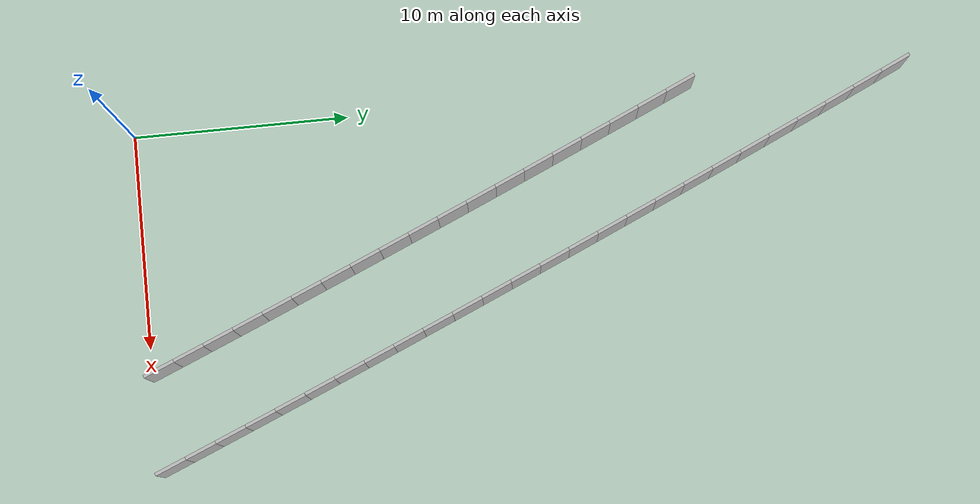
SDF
<?xml version="1.0" ?>
<sdf version="1.6">
  <model name="sps_4435">
    <pose frame="">0 0 0 0 -0 0</pose>
    <static>1</static>
    <self_collide>0</self_collide>
    <allow_auto_disable>0</allow_auto_disable>
    <link name="Wall10172">
      <kinematic>0</kinematic>
      <gravity>1</gravity>
      <self_collide>0</self_collide>
      <collision name="collision">
        <geometry>
          <box>
            <size>1.49656 0.15 2.5</size>
          </box>
        </geometry>
        <pose frame="">0 0 0 0 -0 0</pose>
      </collision>
      <visual name="visual">
        <geometry>
          <box>
            <size>1.49656 0.15 2.5</size>
          </box>
        </geometry>
        <pose frame="">0 0 0 0 -0 0</pose>
        <cast_shadows>1</cast_shadows>
        <transparency>0.0</transparency>
      </visual>
      <pose frame="">11.1612 0.722976 1.25 0 -0 1.96702</pose>
    </link>
    <link name="Wall10173">
      <kinematic>0</kinematic>
      <gravity>1</gravity>
      <self_collide>0</self_collide>
      <collision name="collision">
        <geometry>
          <box>
            <size>1.49668 0.15 2.5</size>
          </box>
        </geometry>
        <pose frame="">0 0 0 0 -0 0</pose>
      </collision>
      <visual name="visual">
        <geometry>
          <box>
            <size>1.49668 0.15 2.5</size>
          </box>
        </geometry>
        <pose frame="">0 0 0 0 -0 0</pose>
        <cast_shadows>1</cast_shadows>
        <transparency>0.0</transparency>
      </visual>
      <pose frame="">10.5826 2.10319 1.25 0 -0 1.96858</pose>
    </link>
    <link name="Wall10174">
      <kinematic>0</kinematic>
      <gravity>1</gravity>
      <self_collide>0</self_collide>
      <collision name="collision">
        <geometry>
          <box>
            <size>1.49653 0.15 2.5</size>
          </box>
        </geometry>
        <pose frame="">0 0 0 0 -0 0</pose>
      </collision>
      <visual name="visual">
        <geometry>
          <box>
            <size>1.49653 0.15 2.5</size>
          </box>
        </geometry>
        <pose frame="">0 0 0 0 -0 0</pose>
        <cast_shadows>1</cast_shadows>
        <transparency>0.0</transparency>
      </visual>
      <pose frame="">10.0018 3.4825 1.25 0 -0 1.97012</pose>
    </link>
    <link name="Wall10175">
      <kinematic>0</kinematic>
      <gravity>1</gravity>
      <self_collide>0</self_collide>
      <collision name="collision">
        <geometry>
          <box>
            <size>1.49653 0.15 2.5</size>
          </box>
        </geometry>
        <pose frame="">0 0 0 0 -0 0</pose>
      </collision>
      <visual name="visual">
        <geometry>
          <box>
            <size>1.49653 0.15 2.5</size>
          </box>
        </geometry>
        <pose frame="">0 0 0 0 -0 0</pose>
        <cast_shadows>1</cast_shadows>
        <transparency>0.0</transparency>
      </visual>
      <pose frame="">9.41875 4.86079 1.25 0 -0 1.97181</pose>
    </link>
    <link name="Wall10176">
      <kinematic>0</kinematic>
      <gravity>1</gravity>
      <self_collide>0</self_collide>
      <collision name="collision">
        <geometry>
          <box>
            <size>1.49639 0.15 2.5</size>
          </box>
        </geometry>
        <pose frame="">0 0 0 0 -0 0</pose>
      </collision>
      <visual name="visual">
        <geometry>
          <box>
            <size>1.49639 0.15 2.5</size>
          </box>
        </geometry>
        <pose frame="">0 0 0 0 -0 0</pose>
        <cast_shadows>1</cast_shadows>
        <transparency>0.0</transparency>
      </visual>
      <pose frame="">8.83355 6.23808 1.25 0 -0 1.97335</pose>
    </link>
    <link name="Wall10177">
      <kinematic>0</kinematic>
      <gravity>1</gravity>
      <self_collide>0</self_collide>
      <collision name="collision">
        <geometry>
          <box>
            <size>1.49662 0.15 2.5</size>
          </box>
        </geometry>
        <pose frame="">0 0 0 0 -0 0</pose>
      </collision>
      <visual name="visual">
        <geometry>
          <box>
            <size>1.49662 0.15 2.5</size>
          </box>
        </geometry>
        <pose frame="">0 0 0 0 -0 0</pose>
        <cast_shadows>1</cast_shadows>
        <transparency>0.0</transparency>
      </visual>
      <pose frame="">8.24615 7.61449 1.25 0 -0 1.97497</pose>
    </link>
    <link name="Wall10178">
      <kinematic>0</kinematic>
      <gravity>1</gravity>
      <self_collide>0</self_collide>
      <collision name="collision">
        <geometry>
          <box>
            <size>1.49649 0.15 2.5</size>
          </box>
        </geometry>
        <pose frame="">0 0 0 0 -0 0</pose>
      </collision>
      <visual name="visual">
        <geometry>
          <box>
            <size>1.49649 0.15 2.5</size>
          </box>
        </geometry>
        <pose frame="">0 0 0 0 -0 0</pose>
        <cast_shadows>1</cast_shadows>
        <transparency>0.0</transparency>
      </visual>
      <pose frame="">7.65655 8.99 1.25 0 -0 1.97652</pose>
    </link>
    <link name="Wall10179">
      <kinematic>0</kinematic>
      <gravity>1</gravity>
      <self_collide>0</self_collide>
      <collision name="collision">
        <geometry>
          <box>
            <size>1.49638 0.15 2.5</size>
          </box>
        </geometry>
        <pose frame="">0 0 0 0 -0 0</pose>
      </collision>
      <visual name="visual">
        <geometry>
          <box>
            <size>1.49638 0.15 2.5</size>
          </box>
        </geometry>
        <pose frame="">0 0 0 0 -0 0</pose>
        <cast_shadows>1</cast_shadows>
        <transparency>0.0</transparency>
      </visual>
      <pose frame="">7.06484 10.3645 1.25 0 -0 1.9781</pose>
    </link>
    <link name="Wall10180">
      <kinematic>0</kinematic>
      <gravity>1</gravity>
      <self_collide>0</self_collide>
      <collision name="collision">
        <geometry>
          <box>
            <size>1.49658 0.15 2.5</size>
          </box>
        </geometry>
        <pose frame="">0 0 0 0 -0 0</pose>
      </collision>
      <visual name="visual">
        <geometry>
          <box>
            <size>1.49658 0.15 2.5</size>
          </box>
        </geometry>
        <pose frame="">0 0 0 0 -0 0</pose>
        <cast_shadows>1</cast_shadows>
        <transparency>0.0</transparency>
      </visual>
      <pose frame="">6.47097 11.7381 1.25 0 -0 1.97965</pose>
    </link>
    <link name="Wall10181">
      <kinematic>0</kinematic>
      <gravity>1</gravity>
      <self_collide>0</self_collide>
      <collision name="collision">
        <geometry>
          <box>
            <size>1.49645 0.15 2.5</size>
          </box>
        </geometry>
        <pose frame="">0 0 0 0 -0 0</pose>
      </collision>
      <visual name="visual">
        <geometry>
          <box>
            <size>1.49645 0.15 2.5</size>
          </box>
        </geometry>
        <pose frame="">0 0 0 0 -0 0</pose>
        <cast_shadows>1</cast_shadows>
        <transparency>0.0</transparency>
      </visual>
      <pose frame="">5.87496 13.1108 1.25 0 -0 1.98119</pose>
    </link>
    <link name="Wall10182">
      <kinematic>0</kinematic>
      <gravity>1</gravity>
      <self_collide>0</self_collide>
      <collision name="collision">
        <geometry>
          <box>
            <size>1.49665 0.15 2.5</size>
          </box>
        </geometry>
        <pose frame="">0 0 0 0 -0 0</pose>
      </collision>
      <visual name="visual">
        <geometry>
          <box>
            <size>1.49665 0.15 2.5</size>
          </box>
        </geometry>
        <pose frame="">0 0 0 0 -0 0</pose>
        <cast_shadows>1</cast_shadows>
        <transparency>0.0</transparency>
      </visual>
      <pose frame="">5.27676 14.4826 1.25 0 -0 1.98283</pose>
    </link>
    <link name="Wall10183">
      <kinematic>0</kinematic>
      <gravity>1</gravity>
      <self_collide>0</self_collide>
      <collision name="collision">
        <geometry>
          <box>
            <size>1.49637 0.15 2.5</size>
          </box>
        </geometry>
        <pose frame="">0 0 0 0 -0 0</pose>
      </collision>
      <visual name="visual">
        <geometry>
          <box>
            <size>1.49637 0.15 2.5</size>
          </box>
        </geometry>
        <pose frame="">0 0 0 0 -0 0</pose>
        <cast_shadows>1</cast_shadows>
        <transparency>0.0</transparency>
      </visual>
      <pose frame="">4.67635 15.8534 1.25 0 -0 1.98442</pose>
    </link>
    <link name="Wall10184">
      <kinematic>0</kinematic>
      <gravity>1</gravity>
      <self_collide>0</self_collide>
      <collision name="collision">
        <geometry>
          <box>
            <size>1.49663 0.15 2.5</size>
          </box>
        </geometry>
        <pose frame="">0 0 0 0 -0 0</pose>
      </collision>
      <visual name="visual">
        <geometry>
          <box>
            <size>1.49663 0.15 2.5</size>
          </box>
        </geometry>
        <pose frame="">0 0 0 0 -0 0</pose>
        <cast_shadows>1</cast_shadows>
        <transparency>0.0</transparency>
      </visual>
      <pose frame="">4.07375 17.2232 1.25 0 -0 1.98604</pose>
    </link>
    <link name="Wall10185">
      <kinematic>0</kinematic>
      <gravity>1</gravity>
      <self_collide>0</self_collide>
      <collision name="collision">
        <geometry>
          <box>
            <size>1.49652 0.15 2.5</size>
          </box>
        </geometry>
        <pose frame="">0 0 0 0 -0 0</pose>
      </collision>
      <visual name="visual">
        <geometry>
          <box>
            <size>1.49652 0.15 2.5</size>
          </box>
        </geometry>
        <pose frame="">0 0 0 0 -0 0</pose>
        <cast_shadows>1</cast_shadows>
        <transparency>0.0</transparency>
      </visual>
      <pose frame="">3.46896 18.5921 1.25 0 -0 1.98759</pose>
    </link>
    <link name="Wall10186">
      <kinematic>0</kinematic>
      <gravity>1</gravity>
      <self_collide>0</self_collide>
      <collision name="collision">
        <geometry>
          <box>
            <size>1.49644 0.15 2.5</size>
          </box>
        </geometry>
        <pose frame="">0 0 0 0 -0 0</pose>
      </collision>
      <visual name="visual">
        <geometry>
          <box>
            <size>1.49644 0.15 2.5</size>
          </box>
        </geometry>
        <pose frame="">0 0 0 0 -0 0</pose>
        <cast_shadows>1</cast_shadows>
        <transparency>0.0</transparency>
      </visual>
      <pose frame="">2.86205 19.96 1.25 0 -0 1.98917</pose>
    </link>
    <link name="Wall10187">
      <kinematic>0</kinematic>
      <gravity>1</gravity>
      <self_collide>0</self_collide>
      <collision name="collision">
        <geometry>
          <box>
            <size>1.49663 0.15 2.5</size>
          </box>
        </geometry>
        <pose frame="">0 0 0 0 -0 0</pose>
      </collision>
      <visual name="visual">
        <geometry>
          <box>
            <size>1.49663 0.15 2.5</size>
          </box>
        </geometry>
        <pose frame="">0 0 0 0 -0 0</pose>
        <cast_shadows>1</cast_shadows>
        <transparency>0.0</transparency>
      </visual>
      <pose frame="">2.25295 21.327 1.25 0 -0 1.99077</pose>
    </link>
    <link name="Wall10188">
      <kinematic>0</kinematic>
      <gravity>1</gravity>
      <self_collide>0</self_collide>
      <collision name="collision">
        <geometry>
          <box>
            <size>1.49645 0.15 2.5</size>
          </box>
        </geometry>
        <pose frame="">0 0 0 0 -0 0</pose>
      </collision>
      <visual name="visual">
        <geometry>
          <box>
            <size>1.49645 0.15 2.5</size>
          </box>
        </geometry>
        <pose frame="">0 0 0 0 -0 0</pose>
        <cast_shadows>1</cast_shadows>
        <transparency>0.0</transparency>
      </visual>
      <pose frame="">1.64165 22.693 1.25 0 -0 1.99239</pose>
    </link>
    <link name="Wall10189">
      <kinematic>0</kinematic>
      <gravity>1</gravity>
      <self_collide>0</self_collide>
      <collision name="collision">
        <geometry>
          <box>
            <size>1.49657 0.15 2.5</size>
          </box>
        </geometry>
        <pose frame="">0 0 0 0 -0 0</pose>
      </collision>
      <visual name="visual">
        <geometry>
          <box>
            <size>1.49657 0.15 2.5</size>
          </box>
        </geometry>
        <pose frame="">0 0 0 0 -0 0</pose>
        <cast_shadows>1</cast_shadows>
        <transparency>0.0</transparency>
      </visual>
      <pose frame="">1.02825 24.058 1.25 0 -0 1.99387</pose>
    </link>
    <link name="Wall10190">
      <kinematic>0</kinematic>
      <gravity>1</gravity>
      <self_collide>0</self_collide>
      <collision name="collision">
        <geometry>
          <box>
            <size>1.49651 0.15 2.5</size>
          </box>
        </geometry>
        <pose frame="">0 0 0 0 -0 0</pose>
      </collision>
      <visual name="visual">
        <geometry>
          <box>
            <size>1.49651 0.15 2.5</size>
          </box>
        </geometry>
        <pose frame="">0 0 0 0 -0 0</pose>
        <cast_shadows>1</cast_shadows>
        <transparency>0.0</transparency>
      </visual>
      <pose frame="">0.412742 25.4221 1.25 0 -0 1.99546</pose>
    </link>
    <link name="Wall10768">
      <kinematic>0</kinematic>
      <gravity>1</gravity>
      <self_collide>0</self_collide>
      <collision name="collision">
        <geometry>
          <box>
            <size>1.50315 0.15 2.5</size>
          </box>
        </geometry>
        <pose frame="">0 0 0 0 -0 0</pose>
      </collision>
      <visual name="visual">
        <geometry>
          <box>
            <size>1.50315 0.15 2.5</size>
          </box>
        </geometry>
        <pose frame="">0 0 0 0 -0 0</pose>
        <cast_shadows>1</cast_shadows>
        <transparency>0.0</transparency>
      </visual>
      <pose frame="">15.5597 0.934279 1.25 0 -0 1.96549</pose>
    </link>
    <link name="Wall10769">
      <kinematic>0</kinematic>
      <gravity>1</gravity>
      <self_collide>0</self_collide>
      <collision name="collision">
        <geometry>
          <box>
            <size>1.50299 0.15 2.5</size>
          </box>
        </geometry>
        <pose frame="">0 0 0 0 -0 0</pose>
      </collision>
      <visual name="visual">
        <geometry>
          <box>
            <size>1.50299 0.15 2.5</size>
          </box>
        </geometry>
        <pose frame="">0 0 0 0 -0 0</pose>
        <cast_shadows>1</cast_shadows>
        <transparency>0.0</transparency>
      </visual>
      <pose frame="">14.9805 2.32127 1.25 0 -0 1.96725</pose>
    </link>
    <link name="Wall10770">
      <kinematic>0</kinematic>
      <gravity>1</gravity>
      <self_collide>0</self_collide>
      <collision name="collision">
        <geometry>
          <box>
            <size>1.50314 0.15 2.5</size>
          </box>
        </geometry>
        <pose frame="">0 0 0 0 -0 0</pose>
      </collision>
      <visual name="visual">
        <geometry>
          <box>
            <size>1.50314 0.15 2.5</size>
          </box>
        </geometry>
        <pose frame="">0 0 0 0 -0 0</pose>
        <cast_shadows>1</cast_shadows>
        <transparency>0.0</transparency>
      </visual>
      <pose frame="">14.3992 3.70738 1.25 0 -0 1.96853</pose>
    </link>
    <link name="Wall10771">
      <kinematic>0</kinematic>
      <gravity>1</gravity>
      <self_collide>0</self_collide>
      <collision name="collision">
        <geometry>
          <box>
            <size>1.50316 0.15 2.5</size>
          </box>
        </geometry>
        <pose frame="">0 0 0 0 -0 0</pose>
      </collision>
      <visual name="visual">
        <geometry>
          <box>
            <size>1.50316 0.15 2.5</size>
          </box>
        </geometry>
        <pose frame="">0 0 0 0 -0 0</pose>
        <cast_shadows>1</cast_shadows>
        <transparency>0.0</transparency>
      </visual>
      <pose frame="">13.8158 5.0927 1.25 0 -0 1.97024</pose>
    </link>
    <link name="Wall10772">
      <kinematic>0</kinematic>
      <gravity>1</gravity>
      <self_collide>0</self_collide>
      <collision name="collision">
        <geometry>
          <box>
            <size>1.50299 0.15 2.5</size>
          </box>
        </geometry>
        <pose frame="">0 0 0 0 -0 0</pose>
      </collision>
      <visual name="visual">
        <geometry>
          <box>
            <size>1.50299 0.15 2.5</size>
          </box>
        </geometry>
        <pose frame="">0 0 0 0 -0 0</pose>
        <cast_shadows>1</cast_shadows>
        <transparency>0.0</transparency>
      </visual>
      <pose frame="">13.2302 6.477 1.25 0 -0 1.97175</pose>
    </link>
    <link name="Wall10773">
      <kinematic>0</kinematic>
      <gravity>1</gravity>
      <self_collide>0</self_collide>
      <collision name="collision">
        <geometry>
          <box>
            <size>1.50312 0.15 2.5</size>
          </box>
        </geometry>
        <pose frame="">0 0 0 0 -0 0</pose>
      </collision>
      <visual name="visual">
        <geometry>
          <box>
            <size>1.50312 0.15 2.5</size>
          </box>
        </geometry>
        <pose frame="">0 0 0 0 -0 0</pose>
        <cast_shadows>1</cast_shadows>
        <transparency>0.0</transparency>
      </visual>
      <pose frame="">12.6424 7.8604 1.25 0 -0 1.9733</pose>
    </link>
    <link name="Wall10774">
      <kinematic>0</kinematic>
      <gravity>1</gravity>
      <self_collide>0</self_collide>
      <collision name="collision">
        <geometry>
          <box>
            <size>1.50308 0.15 2.5</size>
          </box>
        </geometry>
        <pose frame="">0 0 0 0 -0 0</pose>
      </collision>
      <visual name="visual">
        <geometry>
          <box>
            <size>1.50308 0.15 2.5</size>
          </box>
        </geometry>
        <pose frame="">0 0 0 0 -0 0</pose>
        <cast_shadows>1</cast_shadows>
        <transparency>0.0</transparency>
      </visual>
      <pose frame="">12.0525 9.2429 1.25 0 -0 1.9749</pose>
    </link>
    <link name="Wall10775">
      <kinematic>0</kinematic>
      <gravity>1</gravity>
      <self_collide>0</self_collide>
      <collision name="collision">
        <geometry>
          <box>
            <size>1.503 0.15 2.5</size>
          </box>
        </geometry>
        <pose frame="">0 0 0 0 -0 0</pose>
      </collision>
      <visual name="visual">
        <geometry>
          <box>
            <size>1.503 0.15 2.5</size>
          </box>
        </geometry>
        <pose frame="">0 0 0 0 -0 0</pose>
        <cast_shadows>1</cast_shadows>
        <transparency>0.0</transparency>
      </visual>
      <pose frame="">11.4604 10.6244 1.25 0 -0 1.97651</pose>
    </link>
    <link name="Wall10776">
      <kinematic>0</kinematic>
      <gravity>1</gravity>
      <self_collide>0</self_collide>
      <collision name="collision">
        <geometry>
          <box>
            <size>1.50314 0.15 2.5</size>
          </box>
        </geometry>
        <pose frame="">0 0 0 0 -0 0</pose>
      </collision>
      <visual name="visual">
        <geometry>
          <box>
            <size>1.50314 0.15 2.5</size>
          </box>
        </geometry>
        <pose frame="">0 0 0 0 -0 0</pose>
        <cast_shadows>1</cast_shadows>
        <transparency>0.0</transparency>
      </visual>
      <pose frame="">10.8661 12.005 1.25 0 -0 1.97807</pose>
    </link>
    <link name="Wall10777">
      <kinematic>0</kinematic>
      <gravity>1</gravity>
      <self_collide>0</self_collide>
      <collision name="collision">
        <geometry>
          <box>
            <size>1.50287 0.15 2.5</size>
          </box>
        </geometry>
        <pose frame="">0 0 0 0 -0 0</pose>
      </collision>
      <visual name="visual">
        <geometry>
          <box>
            <size>1.50287 0.15 2.5</size>
          </box>
        </geometry>
        <pose frame="">0 0 0 0 -0 0</pose>
        <cast_shadows>1</cast_shadows>
        <transparency>0.0</transparency>
      </visual>
      <pose frame="">10.2697 13.3846 1.25 0 -0 1.9796</pose>
    </link>
    <link name="Wall10778">
      <kinematic>0</kinematic>
      <gravity>1</gravity>
      <self_collide>0</self_collide>
      <collision name="collision">
        <geometry>
          <box>
            <size>1.50303 0.15 2.5</size>
          </box>
        </geometry>
        <pose frame="">0 0 0 0 -0 0</pose>
      </collision>
      <visual name="visual">
        <geometry>
          <box>
            <size>1.50303 0.15 2.5</size>
          </box>
        </geometry>
        <pose frame="">0 0 0 0 -0 0</pose>
        <cast_shadows>1</cast_shadows>
        <transparency>0.0</transparency>
      </visual>
      <pose frame="">9.67113 14.7632 1.25 0 -0 1.98128</pose>
    </link>
    <link name="Wall10779">
      <kinematic>0</kinematic>
      <gravity>1</gravity>
      <self_collide>0</self_collide>
      <collision name="collision">
        <geometry>
          <box>
            <size>1.50319 0.15 2.5</size>
          </box>
        </geometry>
        <pose frame="">0 0 0 0 -0 0</pose>
      </collision>
      <visual name="visual">
        <geometry>
          <box>
            <size>1.50319 0.15 2.5</size>
          </box>
        </geometry>
        <pose frame="">0 0 0 0 -0 0</pose>
        <cast_shadows>1</cast_shadows>
        <transparency>0.0</transparency>
      </visual>
      <pose frame="">9.07024 16.141 1.25 0 -0 1.98283</pose>
    </link>
    <link name="Wall10780">
      <kinematic>0</kinematic>
      <gravity>1</gravity>
      <self_collide>0</self_collide>
      <collision name="collision">
        <geometry>
          <box>
            <size>1.50301 0.15 2.5</size>
          </box>
        </geometry>
        <pose frame="">0 0 0 0 -0 0</pose>
      </collision>
      <visual name="visual">
        <geometry>
          <box>
            <size>1.50301 0.15 2.5</size>
          </box>
        </geometry>
        <pose frame="">0 0 0 0 -0 0</pose>
        <cast_shadows>1</cast_shadows>
        <transparency>0.0</transparency>
      </visual>
      <pose frame="">8.46715 17.5178 1.25 0 -0 1.98448</pose>
    </link>
    <link name="Wall10781">
      <kinematic>0</kinematic>
      <gravity>1</gravity>
      <self_collide>0</self_collide>
      <collision name="collision">
        <geometry>
          <box>
            <size>1.50316 0.15 2.5</size>
          </box>
        </geometry>
        <pose frame="">0 0 0 0 -0 0</pose>
      </collision>
      <visual name="visual">
        <geometry>
          <box>
            <size>1.50316 0.15 2.5</size>
          </box>
        </geometry>
        <pose frame="">0 0 0 0 -0 0</pose>
        <cast_shadows>1</cast_shadows>
        <transparency>0.0</transparency>
      </visual>
      <pose frame="">7.86187 18.8936 1.25 0 -0 1.98603</pose>
    </link>
    <link name="Wall10782">
      <kinematic>0</kinematic>
      <gravity>1</gravity>
      <self_collide>0</self_collide>
      <collision name="collision">
        <geometry>
          <box>
            <size>1.50303 0.15 2.5</size>
          </box>
        </geometry>
        <pose frame="">0 0 0 0 -0 0</pose>
      </collision>
      <visual name="visual">
        <geometry>
          <box>
            <size>1.50303 0.15 2.5</size>
          </box>
        </geometry>
        <pose frame="">0 0 0 0 -0 0</pose>
        <cast_shadows>1</cast_shadows>
        <transparency>0.0</transparency>
      </visual>
      <pose frame="">7.25448 20.2685 1.25 0 -0 1.98754</pose>
    </link>
    <link name="Wall10783">
      <kinematic>0</kinematic>
      <gravity>1</gravity>
      <self_collide>0</self_collide>
      <collision name="collision">
        <geometry>
          <box>
            <size>1.50313 0.15 2.5</size>
          </box>
        </geometry>
        <pose frame="">0 0 0 0 -0 0</pose>
      </collision>
      <visual name="visual">
        <geometry>
          <box>
            <size>1.50313 0.15 2.5</size>
          </box>
        </geometry>
        <pose frame="">0 0 0 0 -0 0</pose>
        <cast_shadows>1</cast_shadows>
        <transparency>0.0</transparency>
      </visual>
      <pose frame="">6.64486 21.6424 1.25 0 -0 1.98928</pose>
    </link>
    <link name="Wall10784">
      <kinematic>0</kinematic>
      <gravity>1</gravity>
      <self_collide>0</self_collide>
      <collision name="collision">
        <geometry>
          <box>
            <size>1.5029 0.15 2.5</size>
          </box>
        </geometry>
        <pose frame="">0 0 0 0 -0 0</pose>
      </collision>
      <visual name="visual">
        <geometry>
          <box>
            <size>1.5029 0.15 2.5</size>
          </box>
        </geometry>
        <pose frame="">0 0 0 0 -0 0</pose>
        <cast_shadows>1</cast_shadows>
        <transparency>0.0</transparency>
      </visual>
      <pose frame="">6.03313 23.0153 1.25 0 -0 1.99064</pose>
    </link>
    <link name="Wall10785">
      <kinematic>0</kinematic>
      <gravity>1</gravity>
      <self_collide>0</self_collide>
      <collision name="collision">
        <geometry>
          <box>
            <size>1.50322 0.15 2.5</size>
          </box>
        </geometry>
        <pose frame="">0 0 0 0 -0 0</pose>
      </collision>
      <visual name="visual">
        <geometry>
          <box>
            <size>1.50322 0.15 2.5</size>
          </box>
        </geometry>
        <pose frame="">0 0 0 0 -0 0</pose>
        <cast_shadows>1</cast_shadows>
        <transparency>0.0</transparency>
      </visual>
      <pose frame="">5.41924 24.3873 1.25 0 -0 1.99241</pose>
    </link>
    <link name="Wall10786">
      <kinematic>0</kinematic>
      <gravity>1</gravity>
      <self_collide>0</self_collide>
      <collision name="collision">
        <geometry>
          <box>
            <size>1.50316 0.15 2.5</size>
          </box>
        </geometry>
        <pose frame="">0 0 0 0 -0 0</pose>
      </collision>
      <visual name="visual">
        <geometry>
          <box>
            <size>1.50316 0.15 2.5</size>
          </box>
        </geometry>
        <pose frame="">0 0 0 0 -0 0</pose>
        <cast_shadows>1</cast_shadows>
        <transparency>0.0</transparency>
      </visual>
      <pose frame="">4.80306 25.7584 1.25 0 -0 1.9939</pose>
    </link>
    <link name="Wall10787">
      <kinematic>0</kinematic>
      <gravity>1</gravity>
      <self_collide>0</self_collide>
      <collision name="collision">
        <geometry>
          <box>
            <size>1.50295 0.15 2.5</size>
          </box>
        </geometry>
        <pose frame="">0 0 0 0 -0 0</pose>
      </collision>
      <visual name="visual">
        <geometry>
          <box>
            <size>1.50295 0.15 2.5</size>
          </box>
        </geometry>
        <pose frame="">0 0 0 0 -0 0</pose>
        <cast_shadows>1</cast_shadows>
        <transparency>0.0</transparency>
      </visual>
      <pose frame="">4.18478 27.1284 1.25 0 -0 1.99557</pose>
    </link>
    <link name="Wall10788">
      <kinematic>0</kinematic>
      <gravity>1</gravity>
      <self_collide>0</self_collide>
      <collision name="collision">
        <geometry>
          <box>
            <size>1.50321 0.15 2.5</size>
          </box>
        </geometry>
        <pose frame="">0 0 0 0 -0 0</pose>
      </collision>
      <visual name="visual">
        <geometry>
          <box>
            <size>1.50321 0.15 2.5</size>
          </box>
        </geometry>
        <pose frame="">0 0 0 0 -0 0</pose>
        <cast_shadows>1</cast_shadows>
        <transparency>0.0</transparency>
      </visual>
      <pose frame="">3.56426 28.4974 1.25 0 -0 1.99714</pose>
    </link>
    <link name="Wall10789">
      <kinematic>0</kinematic>
      <gravity>1</gravity>
      <self_collide>0</self_collide>
      <collision name="collision">
        <geometry>
          <box>
            <size>1.50302 0.15 2.5</size>
          </box>
        </geometry>
        <pose frame="">0 0 0 0 -0 0</pose>
      </collision>
      <visual name="visual">
        <geometry>
          <box>
            <size>1.50302 0.15 2.5</size>
          </box>
        </geometry>
        <pose frame="">0 0 0 0 -0 0</pose>
        <cast_shadows>1</cast_shadows>
        <transparency>0.0</transparency>
      </visual>
      <pose frame="">2.94164 29.8655 1.25 0 -0 1.99862</pose>
    </link>
    <link name="Wall10790">
      <kinematic>0</kinematic>
      <gravity>1</gravity>
      <self_collide>0</self_collide>
      <collision name="collision">
        <geometry>
          <box>
            <size>1.50288 0.15 2.5</size>
          </box>
        </geometry>
        <pose frame="">0 0 0 0 -0 0</pose>
      </collision>
      <visual name="visual">
        <geometry>
          <box>
            <size>1.50288 0.15 2.5</size>
          </box>
        </geometry>
        <pose frame="">0 0 0 0 -0 0</pose>
        <cast_shadows>1</cast_shadows>
        <transparency>0.0</transparency>
      </visual>
      <pose frame="">2.31695 31.2325 1.25 0 -0 2.00027</pose>
    </link>
    <link name="Wall10791">
      <kinematic>0</kinematic>
      <gravity>1</gravity>
      <self_collide>0</self_collide>
      <collision name="collision">
        <geometry>
          <box>
            <size>1.50299 0.15 2.5</size>
          </box>
        </geometry>
        <pose frame="">0 0 0 0 -0 0</pose>
      </collision>
      <visual name="visual">
        <geometry>
          <box>
            <size>1.50299 0.15 2.5</size>
          </box>
        </geometry>
        <pose frame="">0 0 0 0 -0 0</pose>
        <cast_shadows>1</cast_shadows>
        <transparency>0.0</transparency>
      </visual>
      <pose frame="">1.68996 32.5984 1.25 0 -0 2.00198</pose>
    </link>
    <link name="Wall10792">
      <kinematic>0</kinematic>
      <gravity>1</gravity>
      <self_collide>0</self_collide>
      <collision name="collision">
        <geometry>
          <box>
            <size>1.5033 0.15 2.5</size>
          </box>
        </geometry>
        <pose frame="">0 0 0 0 -0 0</pose>
      </collision>
      <visual name="visual">
        <geometry>
          <box>
            <size>1.5033 0.15 2.5</size>
          </box>
        </geometry>
        <pose frame="">0 0 0 0 -0 0</pose>
        <cast_shadows>1</cast_shadows>
        <transparency>0.0</transparency>
      </visual>
      <pose frame="">1.06075 33.9635 1.25 0 -0 2.00341</pose>
    </link>
    <link name="Wall10793">
      <kinematic>0</kinematic>
      <gravity>1</gravity>
      <self_collide>0</self_collide>
      <collision name="collision">
        <geometry>
          <box>
            <size>1.50292 0.15 2.5</size>
          </box>
        </geometry>
        <pose frame="">0 0 0 0 -0 0</pose>
      </collision>
      <visual name="visual">
        <geometry>
          <box>
            <size>1.50292 0.15 2.5</size>
          </box>
        </geometry>
        <pose frame="">0 0 0 0 -0 0</pose>
        <cast_shadows>1</cast_shadows>
        <transparency>0.0</transparency>
      </visual>
      <pose frame="">0.429435 35.3276 1.25 0 -0 2.00509</pose>
    </link>
  </model>
</sdf>
